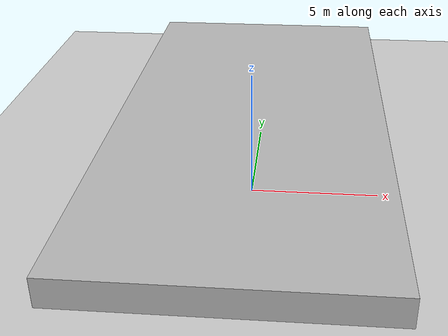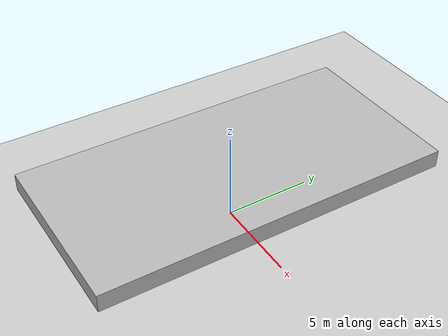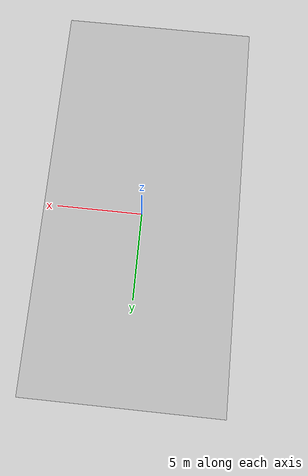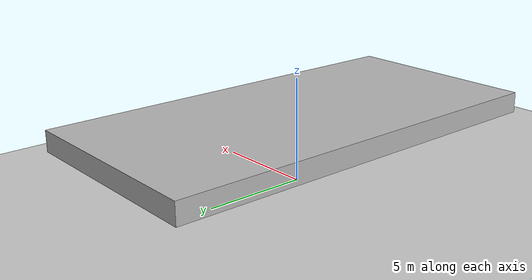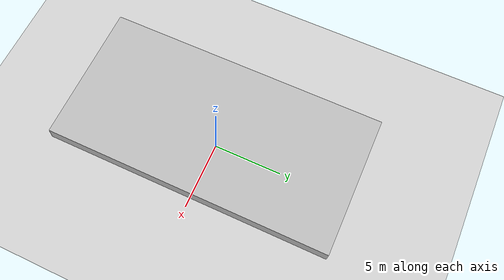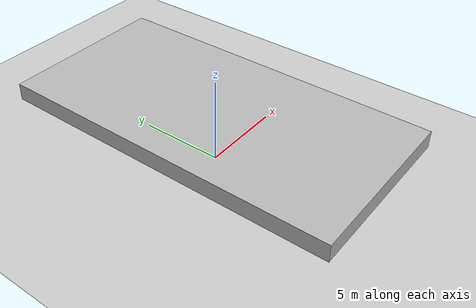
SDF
<?xml version="1.0"?>
<sdf version="1.4">
  <world name="default">
    <gui>
      <camera name="developer_camera">
        <pose>42.116497 1.626615 7.857857 0 0.254009 -3.113798</pose>
      </camera>
    </gui>
    <!-- Ground Plane -->
    <include>
      <uri>model://ground_plane</uri>
    </include>
    <include>
      <uri>model://sun</uri>
    </include>
    <model name='roof'>
      <pose>0 0 3 0 0 0</pose>
      <link name='link'>
        <collision name='collision'>
          <geometry>
            <box>
              <size>10 20 1</size>
            </box>
          </geometry>
        </collision>
        <visual name='visual'>
          <geometry>
            <box>
              <size>10 20 1</size>
            </box>
          </geometry>
        </visual>
      </link>
    </model>
  </world>
</sdf>
